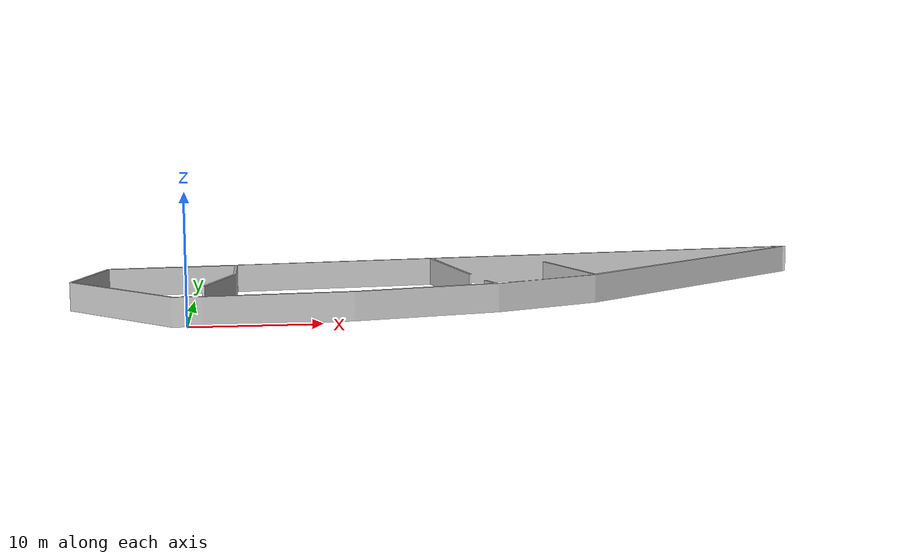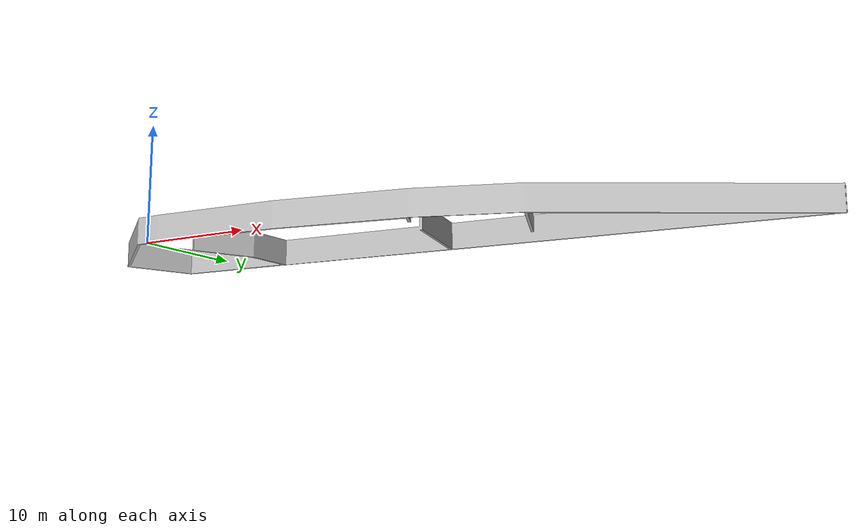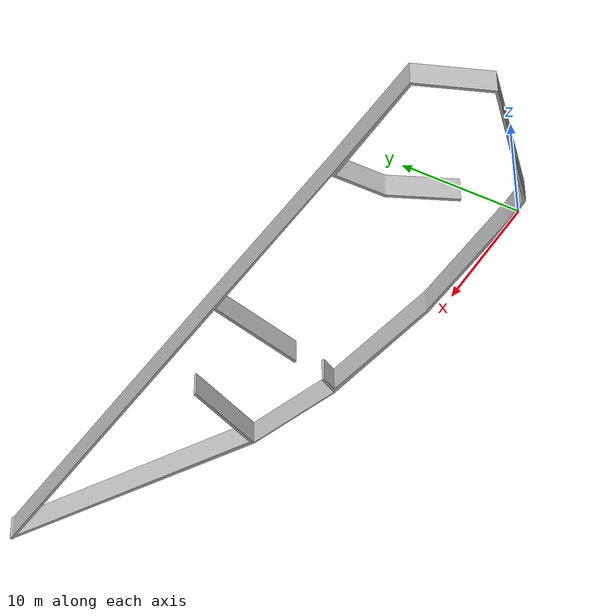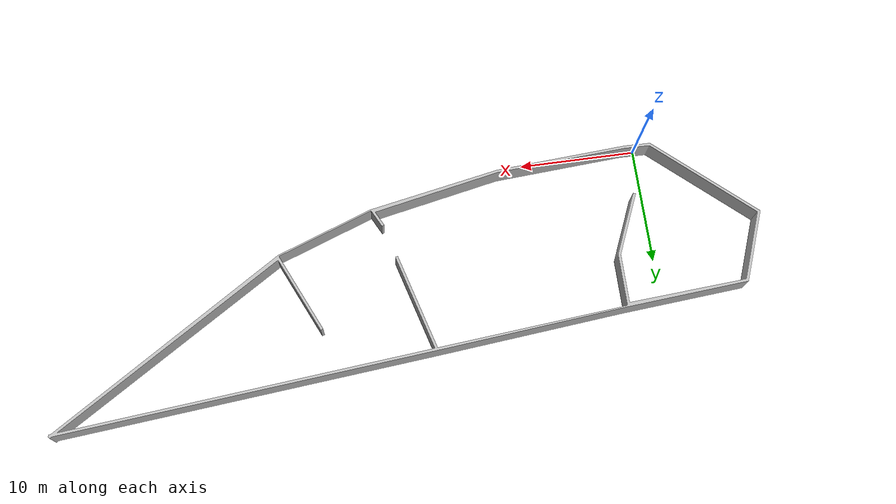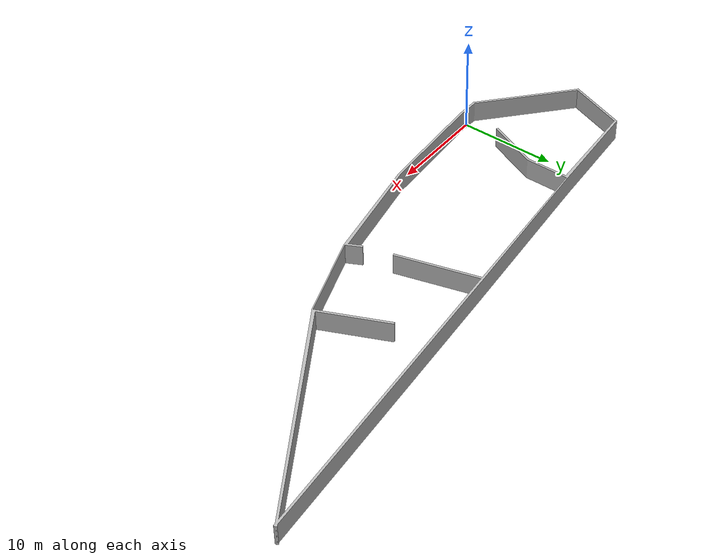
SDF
<?xml version="1.0" ?>
<sdf version="1.6">
  <model name="lab_floor">
    <static>true</static>
    <link name="link">
      <pose>0 0 0 1.5708 0 0</pose>
      <collision name="collision">
        <geometry>
          <mesh>
            <scale>0.75 0.75 0.75</scale>
            <uri>model://lab_model/meshes/floor.obj</uri>
          </mesh>
        </geometry>
      </collision>
      <visual name="visual">
        <geometry>
          <mesh>
            <scale>0.75 0.75 0.75</scale>
            <uri>model://lab_model/meshes/floor.obj</uri>
          </mesh>
        </geometry>
      </visual>
    </link>
  </model>
</sdf>
